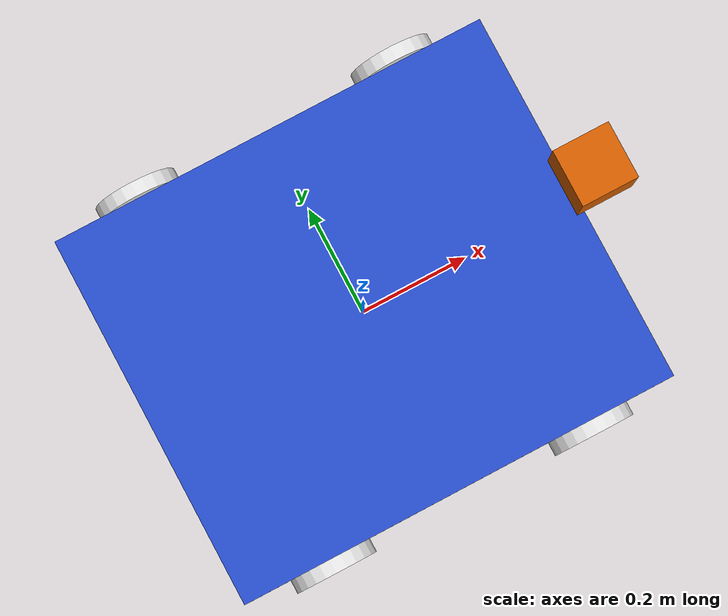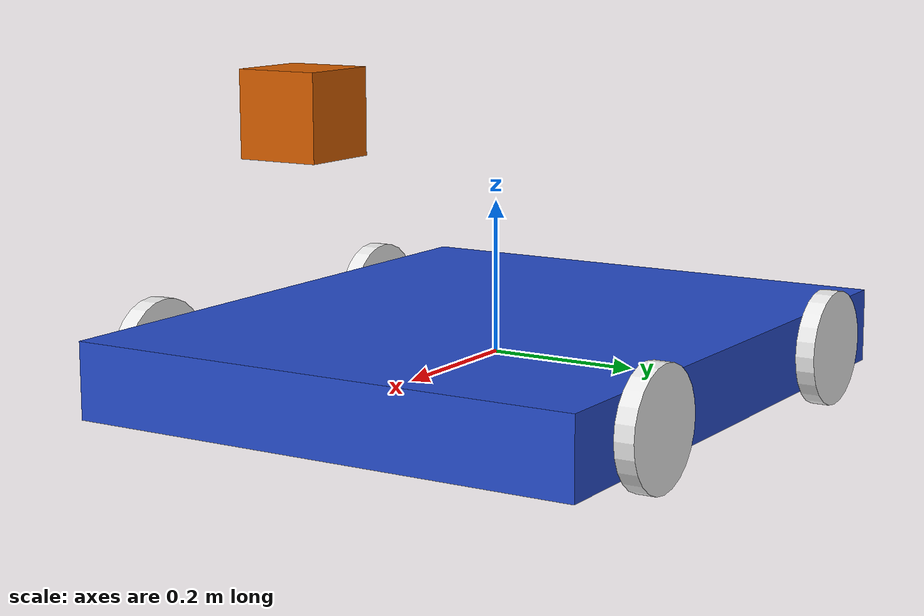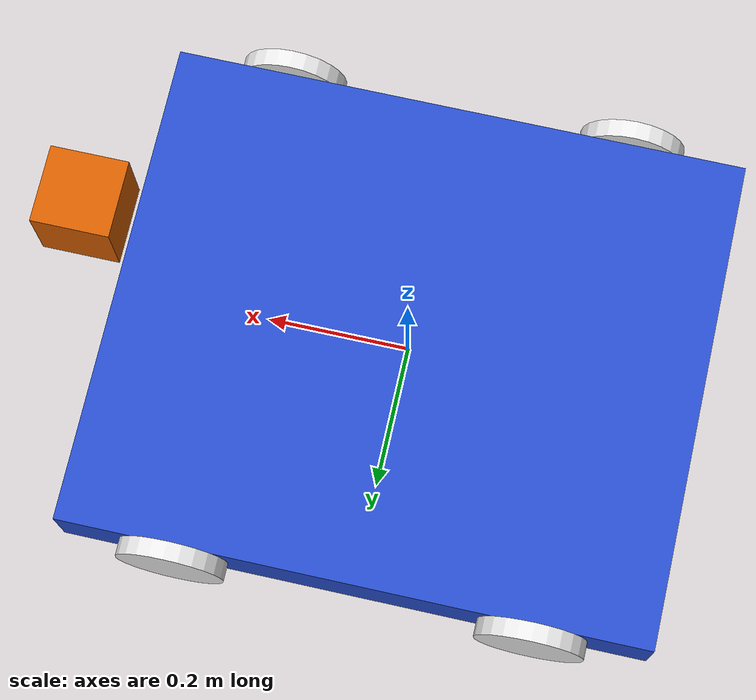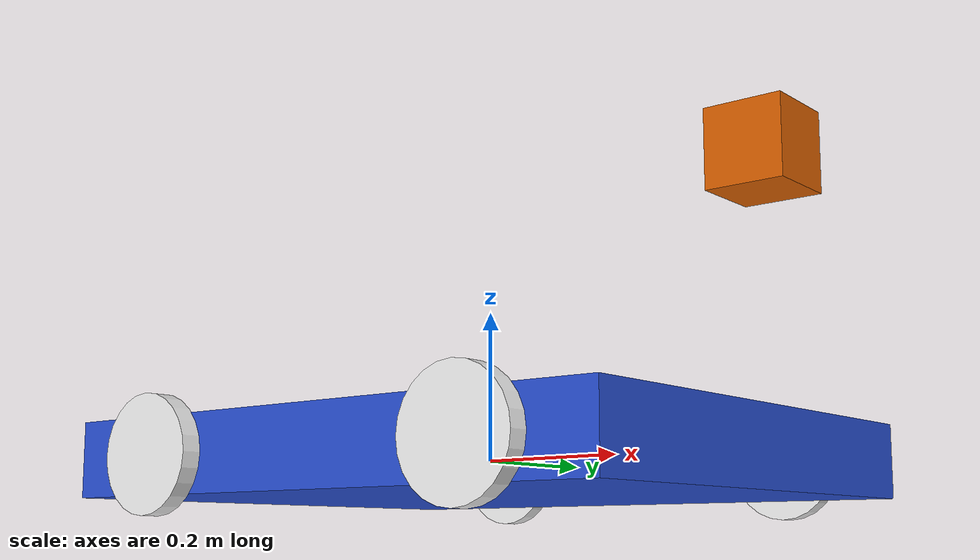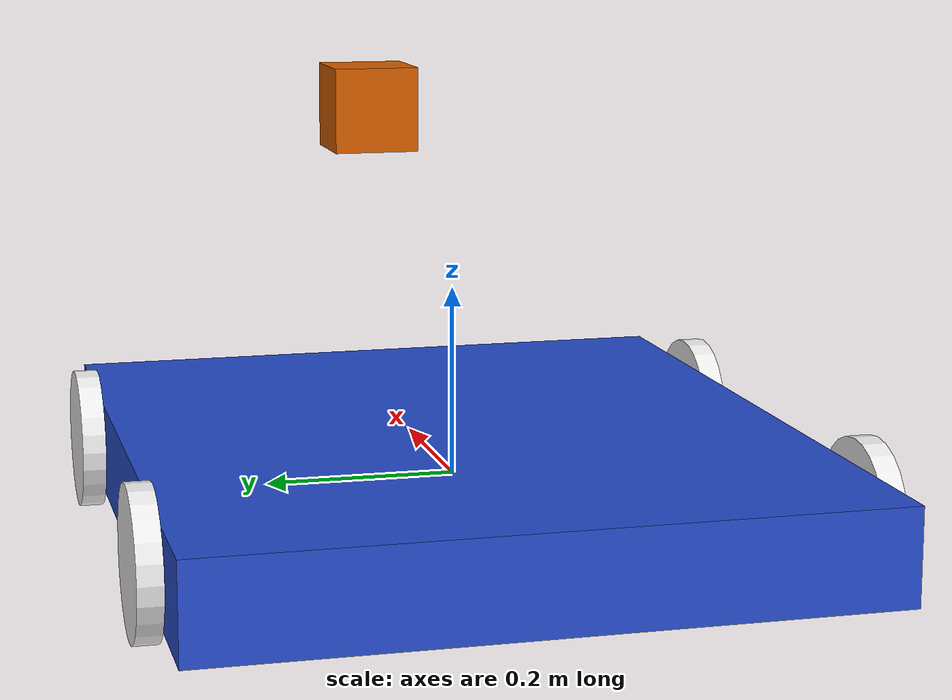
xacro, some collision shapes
<?xml version="1.0"?>
<robot xmlns:xacro="http://www.ros.org/wiki/xacro" name="robot">

  <xacro:property name="baseLength" value="0.8255" />
  <xacro:property name="baseWidth" value="0.6985" />
  <xacro:property name="baseHeight" value="0.1" />

  <xacro:property name="baseMass" value="27" />
  <xacro:property name="wheelMass" value="0.453592" />

  <xacro:property name="wheelWidth" value="0.0254" />
  <xacro:property name="wheelRadius" value="0.0762" />

  <xacro:property name="wheelOffset" value="0.25" />

  <xacro:property name="camMass" value="0.05" />
  <xacro:property name="camWidth" value="0.1016" />
  <xacro:property name="camRadius" value="0.0127" />

  <!-- Import all Gazebo-customization elements, including Gazebo colors -->
  <xacro:include filename="$(find robot_urdf)/urdf/robot.gazebo" />
  <!-- Import Rviz colors -->
  <xacro:include filename="$(find robot_urdf)/urdf/materials.xacro" />

  <link name="base_link">
    <visual>
      <geometry>
        <box size="${baseLength} ${baseWidth} ${baseHeight}"/>
      </geometry>
      <material name="blue"/>
    </visual>
    <collision>
      <geometry>
        <box size="${baseLength} ${baseWidth} ${baseHeight}"/>
      </geometry>
    </collision>
    <inertial>
      <mass value="${baseMass}"/>
      <inertia ixx="${(1/12) * baseMass * ((baseHeight * baseHeight) + (baseLength * baseLength))}" ixy="0.0" ixz="0.0" iyy="${(1/12) * baseMass * ((baseWidth * baseWidth) + (baseLength * baseLength))}" iyz="0.0" izz="${(1/12) * baseMass * ((baseWidth * baseWidth) + (baseHeight * baseHeight))}"/>
    </inertial>
  </link>

  <link name="front_right_wheel">
    <visual>
      <geometry>
        <cylinder length="${wheelWidth}" radius="${wheelRadius}"/>
      </geometry>
      <origin rpy="0 1.57075 1.57075" xyz="0 ${-wheelWidth/2} 0"/>
      <material name="white"/>
    </visual>
    <collision>
      <geometry>
        <cylinder length="${wheelWidth}" radius="${wheelRadius}"/>
      </geometry>
      <origin rpy="0 1.57075 1.57075" xyz="0 ${-wheelWidth/2} 0"/>
    </collision>
    <inertial>
      <mass value="${wheelMass}"/>
      <inertia ixx="0.4" ixy="0.0" ixz="0.0" iyy="0.4" iyz="0.0" izz="0.2"/>
    </inertial>
  </link>

  <joint name="base_to_front_right_wheel" type="continuous">
    <parent link="base_link"/>
    <child link="front_right_wheel"/>
    <axis xyz="0 1 0"/>
    <origin xyz="${wheelOffset} ${-baseWidth /2} 0"/>
  </joint>

  <link name="back_right_wheel">
    <visual>
      <geometry>
        <cylinder length="${wheelWidth}" radius="${wheelRadius}"/>
      </geometry>
      <origin rpy="0 1.57075 1.57075" xyz="0 ${-wheelWidth/2} 0"/>
      <material name="white"/>
    </visual>
    <collision>
      <geometry>
        <cylinder length="${wheelWidth}" radius="${wheelRadius}"/>
      </geometry>
      <origin rpy="0 1.57075 1.57075" xyz="0 ${-wheelWidth/2} 0"/>
    </collision>
    <inertial>
      <mass value="${wheelMass}"/>
      <inertia ixx="0.4" ixy="0.0" ixz="0.0" iyy="0.4" iyz="0.0" izz="0.2"/>
    </inertial>
  </link>

  <joint name="base_to_back_right_wheel" type="continuous">
    <parent link="base_link"/>
    <child link="back_right_wheel"/>
    <axis xyz="0 1 0"/>
    <origin xyz="${-wheelOffset} ${-baseWidth /2} 0"/>
  </joint>

  <link name="front_left_wheel">
    <visual>
      <geometry>
        <cylinder length="${wheelWidth}" radius="${wheelRadius}"/>
      </geometry>
      <origin rpy="0 1.57075 1.57075" xyz="0 ${wheelWidth/2} 0"/>
      <material name="white"/>
    </visual>
    <collision>
      <geometry>
        <cylinder length="${wheelWidth}" radius="${wheelRadius}"/>
      </geometry>
      <origin rpy="0 1.57075 1.57075" xyz="0 ${wheelWidth/2} 0"/>
    </collision>
    <inertial>
      <mass value="${wheelMass}"/>
      <inertia ixx="0.4" ixy="0.0" ixz="0.0" iyy="0.4" iyz="0.0" izz="0.2"/>
    </inertial>
  </link>

  <joint name="base_to_front_left_wheel" type="continuous">
    <parent link="base_link"/>
    <child link="front_left_wheel"/>
    <axis xyz="0 1 0"/>
    <origin xyz="${wheelOffset} ${baseWidth /2} 0"/>
  </joint>

  <link name="back_left_wheel">
    <visual>
      <geometry>
        <cylinder length="${wheelWidth}" radius="${wheelRadius}"/>
      </geometry>
      <origin rpy="0 1.57075 1.57075" xyz="0 ${wheelWidth/2} 0"/>
      <material name="white"/>
    </visual>
    <collision>
      <geometry>
        <cylinder length="${wheelWidth}" radius="${wheelRadius}"/>
      </geometry>
      <origin rpy="0 1.57075 1.57075" xyz="0 ${-wheelWidth/2} 0"/>
    </collision>
    <inertial>
      <mass value="${wheelMass}"/>
      <inertia ixx="0.4" ixy="0.0" ixz="0.0" iyy="0.4" iyz="0.0" izz="0.2"/>
    </inertial>
  </link>

  <joint name="base_to_back_left_wheel" type="continuous">
    <parent link="base_link"/>
    <child link="back_left_wheel"/>
    <axis xyz="0 1 0"/>
    <origin xyz="${-wheelOffset} ${baseWidth /2} 0"/>
  </joint>

  <!-- Sensors -->

  <!-- Hokuyo Laser -->

  <joint name="laser_joint" type="fixed">
    <axis xyz="0 1 0" />
    <origin xyz="0.41275 0 0.35" rpy="0 0 0"/>
    <parent link="base_link"/>
    <child link="laser"/>
  </joint>

  <link name="laser">
    <collision>
      <origin xyz="0 0 0" rpy="0 0 0"/>
      <geometry>
	      <box size="0.1 0.1 0.1"/>
      </geometry>
    </collision>

    <visual>
      <origin xyz="0 0 0" rpy="0 0 0"/>
      <geometry>
        <mesh filename="package://robot_urdf/meshes/hokuyo.dae"/>
      </geometry>
    </visual>

    <inertial>
      <mass value="1e-5" />
      <origin xyz="0 0 0" rpy="0 0 0"/>
      <inertia ixx="1e-6" ixy="0" ixz="0" iyy="1e-6" iyz="0" izz="1e-6" />
    </inertial>
  </link>

</robot>
